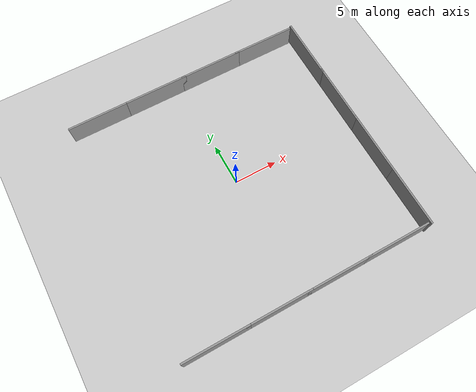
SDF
<sdf version="1.7">
 <world name="default">
  <light name="sun" type="directional">
   <pose>0 0 10 0 -0 0</pose>
   <diffuse>0.8 0.8 0.8 1</diffuse>
   <specular>0.2 0.2 0.2 1</specular>
   <attenuation>
    <range>1000</range>
    <constant>0.9</constant>
    <linear>0.01</linear>
    <quadratic>0.001</quadratic>
   </attenuation>
   <direction>-0.5 0.1 -0.9</direction>
   <spot><inner_angle>0</inner_angle><outer_angle>0</outer_angle><falloff>0</falloff></spot>
  </light>
  <model name="ground_plane">
   <static>1</static>
   <link name="link">
    <collision name="collision">
     <geometry><plane><normal>0 0 1</normal><size>100 100</size></plane></geometry>
     <surface><friction><ode><mu>100</mu><mu2>50</mu2></ode></friction></surface>
    </collision>
    <visual name="visual">
     <cast_shadows>0</cast_shadows>
     <geometry><plane><normal>0 0 1</normal><size>100 100</size></plane></geometry>
     <material>
      <script><uri>file://media/materials/scripts/gazebo.material</uri><name>Gazebo/Grey</name></script>
     </material>
    </visual>
   </link>
  </model>
  <gravity>0 0 -9.8</gravity>
  <magnetic_field>6e-06 2.3e-05 -4.2e-05</magnetic_field>
  <atmosphere type="adiabatic"/>
  <physics type="ode">
   <max_step_size>0.001</max_step_size>
   <real_time_factor>1</real_time_factor>
   <real_time_update_rate>1000</real_time_update_rate>
  </physics>
  <scene><ambient>0.4 0.4 0.4 1</ambient><background>0.7 0.7 0.7 1</background><shadows>1</shadows></scene>
  <spherical_coordinates>
   <surface_model>EARTH_WGS84</surface_model>
   <latitude_deg>0</latitude_deg>
   <longitude_deg>0</longitude_deg>
   <elevation>0</elevation>
   <heading_deg>0</heading_deg>
  </spherical_coordinates>
  <model name="grey_wall">
   <static>1</static>
   <link name="link">
    <pose>0 0 1.4 0 -0 0</pose>
    <collision name="collision"><geometry><box><size>7.5 0.2 2.8</size></box></geometry></collision>
    <visual name="visual">
     <cast_shadows>0</cast_shadows>
     <geometry><box><size>7.5 0.2 2.8</size></box></geometry>
     <material>
      <script>
       <uri>model://grey_wall/materials/scripts</uri>
       <uri>model://grey_wall/materials/textures</uri>
       <name>vrc/grey_wall</name>
      </script>
     </material>
    </visual>
   </link>
   <pose>-3 13.5 0 0 -0 0</pose>
  </model>
  <model name="grey_wall_0">
   <static>1</static>
   <link name="link">
    <pose>0 0 1.4 0 -0 0</pose>
    <collision name="collision"><geometry><box><size>7.5 0.2 2.8</size></box></geometry></collision>
    <visual name="visual">
     <cast_shadows>0</cast_shadows>
     <geometry><box><size>7.5 0.2 2.8</size></box></geometry>
     <material>
      <script>
       <uri>model://grey_wall/materials/scripts</uri>
       <uri>model://grey_wall/materials/textures</uri>
       <name>vrc/grey_wall</name>
      </script>
     </material>
    </visual>
   </link>
   <pose>4 13.5 0 0 -0 0</pose>
  </model>
  <model name="grey_wall_1">
   <static>1</static>
   <link name="link">
    <pose>0 0 1.4 0 -0 0</pose>
    <collision name="collision"><geometry><box><size>7.5 0.2 2.8</size></box></geometry></collision>
    <visual name="visual">
     <cast_shadows>0</cast_shadows>
     <geometry><box><size>7.5 0.2 2.8</size></box></geometry>
     <material>
      <script>
       <uri>model://grey_wall/materials/scripts</uri>
       <uri>model://grey_wall/materials/textures</uri>
       <name>vrc/grey_wall</name>
      </script>
     </material>
    </visual>
   </link>
   <pose>11 13.5 0 0 -0 0</pose>
  </model>
  <model name="grey_wall_2">
   <static>1</static>
   <link name="link">
    <pose>0 0 1.4 0 -0 0</pose>
    <collision name="collision"><geometry><box><size>7.5 0.2 2.8</size></box></geometry></collision>
    <visual name="visual">
     <cast_shadows>0</cast_shadows>
     <geometry><box><size>7.5 0.2 2.8</size></box></geometry>
     <material>
      <script>
       <uri>model://grey_wall/materials/scripts</uri>
       <uri>model://grey_wall/materials/textures</uri>
       <name>vrc/grey_wall</name>
      </script>
     </material>
    </visual>
   </link>
   <pose>15 10 0 0 -0 1.57</pose>
  </model>
  <model name="grey_wall_3">
   <static>1</static>
   <link name="link">
    <pose>0 0 1.4 0 -0 0</pose>
    <collision name="collision"><geometry><box><size>7.5 0.2 2.8</size></box></geometry></collision>
    <visual name="visual">
     <cast_shadows>0</cast_shadows>
     <geometry><box><size>7.5 0.2 2.8</size></box></geometry>
     <material>
      <script>
       <uri>model://grey_wall/materials/scripts</uri>
       <uri>model://grey_wall/materials/textures</uri>
       <name>vrc/grey_wall</name>
      </script>
     </material>
    </visual>
   </link>
   <pose>15 3 0 0 -0 1.57</pose>
  </model>
  <model name="grey_wall_4">
   <static>1</static>
   <link name="link">
    <pose>0 0 1.4 0 -0 0</pose>
    <collision name="collision"><geometry><box><size>7.5 0.2 2.8</size></box></geometry></collision>
    <visual name="visual">
     <cast_shadows>0</cast_shadows>
     <geometry><box><size>7.5 0.2 2.8</size></box></geometry>
     <material>
      <script>
       <uri>model://grey_wall/materials/scripts</uri>
       <uri>model://grey_wall/materials/textures</uri>
       <name>vrc/grey_wall</name>
      </script>
     </material>
    </visual>
   </link>
   <pose>15 -4 0 0 -0 1.57</pose>
  </model>
  <model name="grey_wall_5">
   <static>1</static>
   <link name="link">
    <pose>0 0 1.4 0 -0 0</pose>
    <collision name="collision"><geometry><box><size>7.5 0.2 2.8</size></box></geometry></collision>
    <visual name="visual">
     <cast_shadows>0</cast_shadows>
     <geometry><box><size>7.5 0.2 2.8</size></box></geometry>
     <material>
      <script>
       <uri>model://grey_wall/materials/scripts</uri>
       <uri>model://grey_wall/materials/textures</uri>
       <name>vrc/grey_wall</name>
      </script>
     </material>
    </visual>
   </link>
   <pose>15 -11 0 0 -0 1.57</pose>
  </model>
  <model name="grey_wall_6">
   <static>1</static>
   <link name="link">
    <pose>0 0 1.4 0 -0 0</pose>
    <collision name="collision"><geometry><box><size>7.5 0.2 2.8</size></box></geometry></collision>
    <visual name="visual">
     <cast_shadows>0</cast_shadows>
     <geometry><box><size>7.5 0.2 2.8</size></box></geometry>
     <material>
      <script>
       <uri>model://grey_wall/materials/scripts</uri>
       <uri>model://grey_wall/materials/textures</uri>
       <name>vrc/grey_wall</name>
      </script>
     </material>
    </visual>
   </link>
   <pose>-3 -14.5 0 0 -0 0</pose>
  </model>
  <model name="grey_wall_7">
   <static>1</static>
   <link name="link">
    <pose>0 0 1.4 0 -0 0</pose>
    <collision name="collision"><geometry><box><size>7.5 0.2 2.8</size></box></geometry></collision>
    <visual name="visual">
     <cast_shadows>0</cast_shadows>
     <geometry><box><size>7.5 0.2 2.8</size></box></geometry>
     <material>
      <script>
       <uri>model://grey_wall/materials/scripts</uri>
       <uri>model://grey_wall/materials/textures</uri>
       <name>vrc/grey_wall</name>
      </script>
     </material>
    </visual>
   </link>
   <pose>4 -14.5 0 0 -0 0</pose>
  </model>
  <model name="grey_wall_8">
   <static>1</static>
   <link name="link">
    <pose>0 0 1.4 0 -0 0</pose>
    <collision name="collision"><geometry><box><size>7.5 0.2 2.8</size></box></geometry></collision>
    <visual name="visual">
     <cast_shadows>0</cast_shadows>
     <geometry><box><size>7.5 0.2 2.8</size></box></geometry>
     <material>
      <script>
       <uri>model://grey_wall/materials/scripts</uri>
       <uri>model://grey_wall/materials/textures</uri>
       <name>vrc/grey_wall</name>
      </script>
     </material>
    </visual>
   </link>
   <pose>11 -14.5 0 0 -0 0</pose>
  </model>
  <model name="grey_wall_9">
   <static>1</static>
   <link name="link">
    <pose>0 0 1.4 0 -0 0</pose>
    <collision name="collision"><geometry><box><size>7.5 0.2 2.8</size></box></geometry></collision>
    <visual name="visual">
     <cast_shadows>0</cast_shadows>
     <geometry><box><size>7.5 0.2 2.8</size></box></geometry>
     <material>
      <script>
       <uri>model://grey_wall/materials/scripts</uri>
       <uri>model://grey_wall/materials/textures</uri>
       <name>vrc/grey_wall</name>
      </script>
     </material>
    </visual>
   </link>
   <pose>-10 -14.5 0 0 -0 0</pose>
  </model>
  <model name="grey_wall_10">
   <static>1</static>
   <link name="link">
    <pose>0 0 1.4 0 -0 0</pose>
    <collision name="collision"><geometry><box><size>7.5 0.2 2.8</size></box></geometry></collision>
    <visual name="visual">
     <cast_shadows>0</cast_shadows>
     <geometry><box><size>7.5 0.2 2.8</size></box></geometry>
     <material>
      <script>
       <uri>model://grey_wall/materials/scripts</uri>
       <uri>model://grey_wall/materials/textures</uri>
       <name>vrc/grey_wall</name>
      </script>
     </material>
    </visual>
   </link>
   <pose>-10 13.5 0 0 -0 0</pose>
  </model>
 </world>
</sdf>
